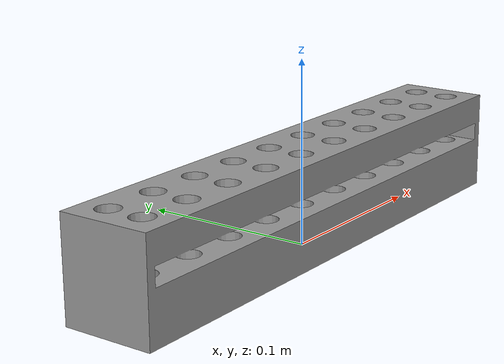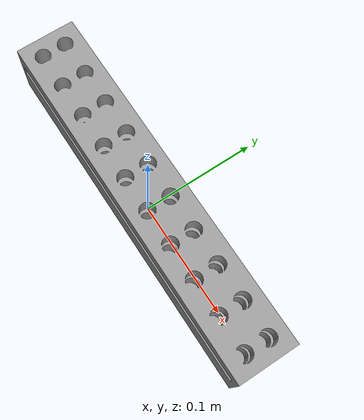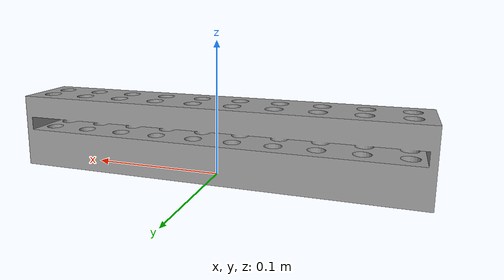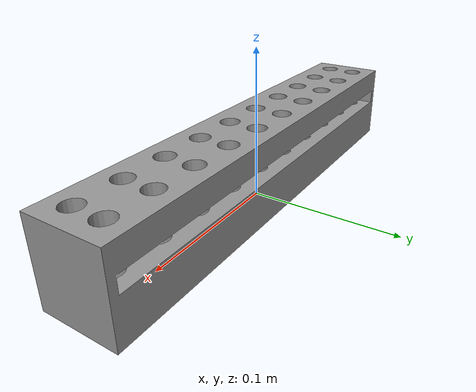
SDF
<?xml version='1.0'?>
<sdf version='1.6'>
  <model name='Jiazi_urdf'>
    <link name='base_link'>
      <pose frame=''>0 0 0 0 -0 0</pose>
      <inertial>
        <pose frame=''>-0 0 0.025258 0 -0 0</pose>
        <mass>0.587087</mass>
        <inertia>
          <ixx>0.000307919</ixx>
          <ixy>3.37593e-20</ixy>
          <ixz>4.8388e-20</ixz>
          <iyy>0.00465696</iyy>
          <iyz>-2.29494e-20</iyz>
          <izz>0.00461183</izz>
        </inertia>
      </inertial>
      <gravity>1</gravity>
      <velocity_decay/>
      <self_collide>0</self_collide>
      <enable_wind>0</enable_wind>
      <kinematic>0</kinematic>
      <visual name='base_link_visual'>
        <pose frame=''>0 0 0 0 -0 0</pose>
        <geometry>
          <mesh>
            <scale>1 1 1</scale>
            <uri>/home/zhitao/diskE/Project/homework9_summation/hw34_yaogao_ws/src/models/Jiazi_urdf/meshes/base_link.STL</uri>
          </mesh>
        </geometry>
        <material>
          <script>
            <name>Gazebo/urGrey</name>
            <uri>file://media/materials/scripts/gazebo.material</uri>
          </script>
          <shader type='pixel'/>
        </material>
        <transparency>0</transparency>
        <cast_shadows>1</cast_shadows>
      </visual>
      <collision name='base_link_collision'>
        <laser_retro>0</laser_retro>
        <max_contacts>10</max_contacts>
        <pose frame=''>0 0 0 0 -0 0</pose>
        <geometry>
          <mesh>
            <uri>/home/zhitao/diskE/Project/homework9_summation/hw34_yaogao_ws/src/models/Jiazi_urdf/meshes/base_link.STL</uri>
            <scale>1 1 1</scale>
          </mesh>
        </geometry>
        <surface>
          <friction>
            <ode>
              <mu>1</mu>
              <mu2>1</mu2>
              <fdir1>0 0 0</fdir1>
              <slip1>0</slip1>
              <slip2>0</slip2>
            </ode>
            <torsional>
              <coefficient>1</coefficient>
              <patch_radius>0</patch_radius>
              <surface_radius>0</surface_radius>
              <use_patch_radius>1</use_patch_radius>
              <ode>
                <slip>0</slip>
              </ode>
            </torsional>
          </friction>
          <bounce>
            <restitution_coefficient>0</restitution_coefficient>
            <threshold>1e+06</threshold>
          </bounce>
          <contact>
            <collide_without_contact>0</collide_without_contact>
            <collide_without_contact_bitmask>1</collide_without_contact_bitmask>
            <collide_bitmask>1</collide_bitmask>
            <ode>
              <soft_cfm>0</soft_cfm>
              <soft_erp>0.2</soft_erp>
              <kp>1e+13</kp>
              <kd>1</kd>
              <max_vel>0.01</max_vel>
              <min_depth>0</min_depth>
            </ode>
            <bullet>
              <split_impulse>1</split_impulse>
              <split_impulse_penetration_threshold>-0.01</split_impulse_penetration_threshold>
              <soft_cfm>0</soft_cfm>
              <soft_erp>0.2</soft_erp>
              <kp>1e+13</kp>
              <kd>1</kd>
            </bullet>
          </contact>
        </surface>
      </collision>
    </link>
    <static>1</static>
    <allow_auto_disable>1</allow_auto_disable>
  </model>
</sdf>
